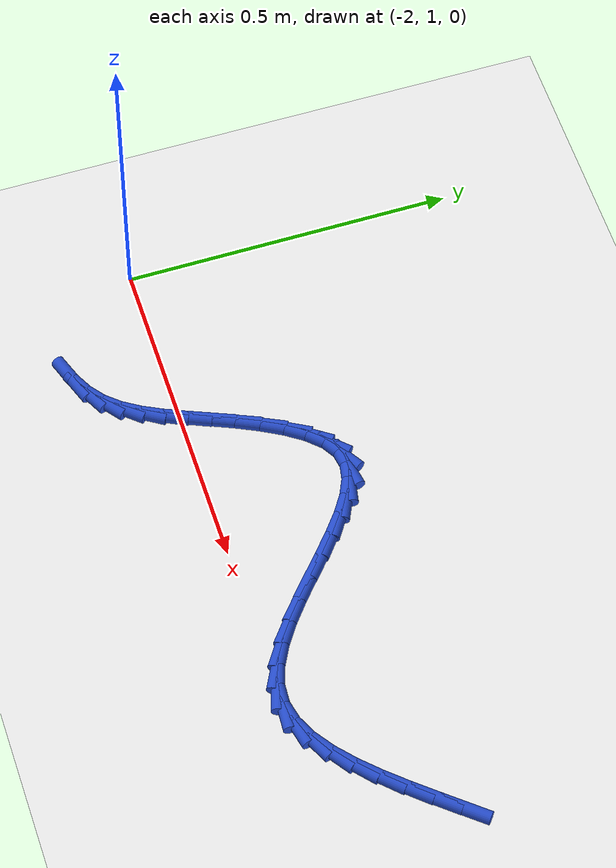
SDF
<sdf version="1.6">
 <world name="default">
  <model name="ground_plane">
   <static>1</static>
   <link name="link">
    <collision name="collision">
     <geometry><plane><normal>0 0 1</normal><size>100 100</size></plane></geometry>
     <surface><friction><ode><mu>100</mu><mu2>50</mu2></ode></friction></surface>
    </collision>
    <visual name="visual">
     <cast_shadows>0</cast_shadows>
     <geometry><plane><normal>0 0 1</normal><size>100 100</size></plane></geometry>
     <material>
      <script><uri>file://media/materials/scripts/gazebo.material</uri><name>Gazebo/WhiteGlow</name></script>
     </material>
    </visual>
   </link>
  </model>
  <model name="line">
   <link name="link_67">
    <pose>-1.0148896354427461 1.1883247469384344 0.01 0 1.57 0.8768384008983708</pose>
    <collision name="collision">
     <geometry><cylinder><radius>0.01</radius><length>0.08</length></cylinder></geometry>
    </collision>
    <visual name="visual">
     <material>
      <script><name>Gazebo/Blue</name><uri>file://media/materials/scripts/gazebo.material</uri></script>
     </material>
     <geometry><cylinder><radius>0.01</radius><length>0.08</length></cylinder></geometry>
    </visual>
   </link>
   <link name="link_68">
    <pose>-1.040775350299143 1.1572125550854837 0.01 0 1.57 0.8687657163153698</pose>
    <collision name="collision">
     <geometry><cylinder><radius>0.01</radius><length>0.08</length></cylinder></geometry>
    </collision>
    <visual name="visual">
     <material>
      <script><name>Gazebo/Blue</name><uri>file://media/materials/scripts/gazebo.material</uri></script>
     </material>
     <geometry><cylinder><radius>0.01</radius><length>0.08</length></cylinder></geometry>
    </visual>
   </link>
   <link name="link_69">
    <pose>-1.0674374701745866 1.125688311052956 0.01 0 1.57 0.8415214317492103</pose>
    <collision name="collision">
     <geometry><cylinder><radius>0.01</radius><length>0.08</length></cylinder></geometry>
    </collision>
    <visual name="visual">
     <material>
      <script><name>Gazebo/Blue</name><uri>file://media/materials/scripts/gazebo.material</uri></script>
     </material>
     <geometry><cylinder><radius>0.01</radius><length>0.08</length></cylinder></geometry>
    </visual>
   </link>
   <link name="link_70">
    <pose>-1.0948083071328285 1.0950588878915377 0.01 0 1.57 0.7927663170238698</pose>
    <collision name="collision">
     <geometry><cylinder><radius>0.01</radius><length>0.08</length></cylinder></geometry>
    </collision>
    <visual name="visual">
     <material>
      <script><name>Gazebo/Blue</name><uri>file://media/materials/scripts/gazebo.material</uri></script>
     </material>
     <geometry><cylinder><radius>0.01</radius><length>0.08</length></cylinder></geometry>
    </visual>
   </link>
   <link name="link_71">
    <pose>-1.1228201732376208 1.0666311586519142 0.01 0 1.57 0.7169864791320324</pose>
    <collision name="collision">
     <geometry><cylinder><radius>0.01</radius><length>0.08</length></cylinder></geometry>
    </collision>
    <visual name="visual">
     <material>
      <script><name>Gazebo/Blue</name><uri>file://media/materials/scripts/gazebo.material</uri></script>
     </material>
     <geometry><cylinder><radius>0.01</radius><length>0.08</length></cylinder></geometry>
    </visual>
   </link>
   <link name="link_72">
    <pose>-1.1514053805527154 1.0417119963847719 0.01 0 1.57 0.6047052007351809</pose>
    <collision name="collision">
     <geometry><cylinder><radius>0.01</radius><length>0.08</length></cylinder></geometry>
    </collision>
    <visual name="visual">
     <material>
      <script><name>Gazebo/Blue</name><uri>file://media/materials/scripts/gazebo.material</uri></script>
     </material>
     <geometry><cylinder><radius>0.01</radius><length>0.08</length></cylinder></geometry>
    </visual>
   </link>
   <link name="link_73">
    <pose>-1.1804962411418634 1.021608274140797 0.01 0 1.57 0.44221020735867445</pose>
    <collision name="collision">
     <geometry><cylinder><radius>0.01</radius><length>0.08</length></cylinder></geometry>
    </collision>
    <visual name="visual">
     <material>
      <script><name>Gazebo/Blue</name><uri>file://media/materials/scripts/gazebo.material</uri></script>
     </material>
     <geometry><cylinder><radius>0.01</radius><length>0.08</length></cylinder></geometry>
    </visual>
   </link>
   <link name="link_74">
    <pose>-1.2100250670688169 1.0076268649706759 0.01 0 1.57 0.21573412126500044</pose>
    <collision name="collision">
     <geometry><cylinder><radius>0.01</radius><length>0.08</length></cylinder></geometry>
    </collision>
    <visual name="visual">
     <material>
      <script><name>Gazebo/Blue</name><uri>file://media/materials/scripts/gazebo.material</uri></script>
     </material>
     <geometry><cylinder><radius>0.01</radius><length>0.08</length></cylinder></geometry>
    </visual>
   </link>
   <link name="link_75">
    <pose>-1.2399241703973276 1.001074641925095 0.01 0 1.57 -0.06392255518098047</pose>
    <collision name="collision">
     <geometry><cylinder><radius>0.01</radius><length>0.08</length></cylinder></geometry>
    </collision>
    <visual name="visual">
     <material>
      <script><name>Gazebo/Blue</name><uri>file://media/materials/scripts/gazebo.material</uri></script>
     </material>
     <geometry><cylinder><radius>0.01</radius><length>0.08</length></cylinder></geometry>
    </visual>
   </link>
   <link name="link_76">
    <pose>-1.2701199931716 1.003007469360951 0.01 0 1.57 -0.30886239715978436</pose>
    <collision name="collision">
     <geometry><cylinder><radius>0.01</radius><length>0.08</length></cylinder></geometry>
    </collision>
    <visual name="visual">
     <material>
      <script><name>Gazebo/Blue</name><uri>file://media/materials/scripts/gazebo.material</uri></script>
     </material>
     <geometry><cylinder><radius>0.01</radius><length>0.08</length></cylinder></geometry>
    </visual>
   </link>
   <link name="link_77">
    <pose>-1.300497324261288 1.0127000746468025 0.01 0 1.57 -0.4830193600694551</pose>
    <collision name="collision">
     <geometry><cylinder><radius>0.01</radius><length>0.08</length></cylinder></geometry>
    </collision>
    <visual name="visual">
     <material>
      <script><name>Gazebo/Blue</name><uri>file://media/materials/scripts/gazebo.material</uri></script>
     </material>
     <geometry><cylinder><radius>0.01</radius><length>0.08</length></cylinder></geometry>
    </visual>
   </link>
   <link name="link_78">
    <pose>-1.3309229395376359 1.0286569289083327 0.01 0 1.57 -0.5992223240504596</pose>
    <collision name="collision">
     <geometry><cylinder><radius>0.01</radius><length>0.08</length></cylinder></geometry>
    </collision>
    <visual name="visual">
     <material>
      <script><name>Gazebo/Blue</name><uri>file://media/materials/scripts/gazebo.material</uri></script>
     </material>
     <geometry><cylinder><radius>0.01</radius><length>0.08</length></cylinder></geometry>
    </visual>
   </link>
   <link name="link_79">
    <pose>-1.3612635430541562 1.049379432263485 0.01 0 1.57 -0.6725451348696061</pose>
    <collision name="collision">
     <geometry><cylinder><radius>0.01</radius><length>0.08</length></cylinder></geometry>
    </collision>
    <visual name="visual">
     <material>
      <script><name>Gazebo/Blue</name><uri>file://media/materials/scripts/gazebo.material</uri></script>
     </material>
     <geometry><cylinder><radius>0.01</radius><length>0.08</length></cylinder></geometry>
    </visual>
   </link>
   <link name="link_80">
    <pose>-1.3913858388643598 1.073368984830202 0.01 0 1.57 -0.7132601924840442</pose>
    <collision name="collision">
     <geometry><cylinder><radius>0.01</radius><length>0.08</length></cylinder></geometry>
    </collision>
    <visual name="visual">
     <material>
      <script><name>Gazebo/Blue</name><uri>file://media/materials/scripts/gazebo.material</uri></script>
     </material>
     <geometry><cylinder><radius>0.01</radius><length>0.08</length></cylinder></geometry>
    </visual>
   </link>
   <link name="link_81">
    <pose>-1.421156531021759 1.0991269867264262 0.01 0 1.57 -0.7265667180575748</pose>
    <collision name="collision">
     <geometry><cylinder><radius>0.01</radius><length>0.08</length></cylinder></geometry>
    </collision>
    <visual name="visual">
     <material>
      <script><name>Gazebo/Blue</name><uri>file://media/materials/scripts/gazebo.material</uri></script>
     </material>
     <geometry><cylinder><radius>0.01</radius><length>0.08</length></cylinder></geometry>
    </visual>
   </link>
   <link name="link_82">
    <pose>-1.450442323579866 1.1251548380701015 0.01 0 1.57 -0.7131706491130523</pose>
    <collision name="collision">
     <geometry><cylinder><radius>0.01</radius><length>0.08</length></cylinder></geometry>
    </collision>
    <visual name="visual">
     <material>
      <script><name>Gazebo/Blue</name><uri>file://media/materials/scripts/gazebo.material</uri></script>
     </material>
     <geometry><cylinder><radius>0.01</radius><length>0.08</length></cylinder></geometry>
    </visual>
   </link>
   <link name="link_83">
    <pose>-1.4791099205921916 1.1499539389791698 0.01 0 1.57 -0.6690110568411057</pose>
    <collision name="collision">
     <geometry><cylinder><radius>0.01</radius><length>0.08</length></cylinder></geometry>
    </collision>
    <visual name="visual">
     <material>
      <script><name>Gazebo/Blue</name><uri>file://media/materials/scripts/gazebo.material</uri></script>
     </material>
     <geometry><cylinder><radius>0.01</radius><length>0.08</length></cylinder></geometry>
    </visual>
   </link>
   <link name="link_84">
    <pose>-1.5070260261122481 1.1720256895715744 0.01 0 1.57 -0.583505202818858</pose>
    <collision name="collision">
     <geometry><cylinder><radius>0.01</radius><length>0.08</length></cylinder></geometry>
    </collision>
    <visual name="visual">
     <material>
      <script><name>Gazebo/Blue</name><uri>file://media/materials/scripts/gazebo.material</uri></script>
     </material>
     <geometry><cylinder><radius>0.01</radius><length>0.08</length></cylinder></geometry>
    </visual>
   </link>
   <link name="link_85">
    <pose>-1.5340573441935477 1.1898714899652585 0.01 0 1.57 -0.4360506105642137</pose>
    <collision name="collision">
     <geometry><cylinder><radius>0.01</radius><length>0.08</length></cylinder></geometry>
    </collision>
    <visual name="visual">
     <material>
      <script><name>Gazebo/Blue</name><uri>file://media/materials/scripts/gazebo.material</uri></script>
     </material>
     <geometry><cylinder><radius>0.01</radius><length>0.08</length></cylinder></geometry>
    </visual>
   </link>
   <link name="link_86">
    <pose>-1.5600705788896008 1.2019927402781647 0.01 0 1.57 -0.19452147789274638</pose>
    <collision name="collision">
     <geometry><cylinder><radius>0.01</radius><length>0.08</length></cylinder></geometry>
    </collision>
    <visual name="visual">
     <material>
      <script><name>Gazebo/Blue</name><uri>file://media/materials/scripts/gazebo.material</uri></script>
     </material>
     <geometry><cylinder><radius>0.01</radius><length>0.08</length></cylinder></geometry>
    </visual>
   </link>
   <link name="link_87">
    <pose>-1.5849324342539206 1.2068908406282364 0.01 0 1.57 0.16077606367250052</pose>
    <collision name="collision">
     <geometry><cylinder><radius>0.01</radius><length>0.08</length></cylinder></geometry>
    </collision>
    <visual name="visual">
     <material>
      <script><name>Gazebo/Blue</name><uri>file://media/materials/scripts/gazebo.material</uri></script>
     </material>
     <geometry><cylinder><radius>0.01</radius><length>0.08</length></cylinder></geometry>
    </visual>
   </link>
   <link name="link_88">
    <pose>-1.60850961435825 1.2030671917439901 0.01 0 1.57 0.5448602734054879</pose>
    <collision name="collision">
     <geometry><cylinder><radius>0.01</radius><length>0.08</length></cylinder></geometry>
    </collision>
    <visual name="visual">
     <material>
      <script><name>Gazebo/Blue</name><uri>file://media/materials/scripts/gazebo.material</uri></script>
     </material>
     <geometry><cylinder><radius>0.01</radius><length>0.08</length></cylinder></geometry>
    </visual>
   </link>
   <link name="link_89">
    <pose>-1.6306868395162615 1.1896265596619744 0.01 0 1.57 0.8061729383634196</pose>
    <collision name="collision">
     <geometry><cylinder><radius>0.01</radius><length>0.08</length></cylinder></geometry>
    </collision>
    <visual name="visual">
     <material>
      <script><name>Gazebo/Blue</name><uri>file://media/materials/scripts/gazebo.material</uri></script>
     </material>
     <geometry><cylinder><radius>0.01</radius><length>0.08</length></cylinder></geometry>
    </visual>
   </link>
   <link name="link_90">
    <pose>-1.6514187357571326 1.1680148581303933 0.01 0 1.57 0.9644395929362332</pose>
    <collision name="collision">
     <geometry><cylinder><radius>0.01</radius><length>0.08</length></cylinder></geometry>
    </collision>
    <visual name="visual">
     <material>
      <script><name>Gazebo/Blue</name><uri>file://media/materials/scripts/gazebo.material</uri></script>
     </material>
     <geometry><cylinder><radius>0.01</radius><length>0.08</length></cylinder></geometry>
    </visual>
   </link>
   <link name="link_91">
    <pose>-1.6706768818050357 1.140245747938085 0.01 0 1.57 1.0630608977642992</pose>
    <collision name="collision">
     <geometry><cylinder><radius>0.01</radius><length>0.08</length></cylinder></geometry>
    </collision>
    <visual name="visual">
     <material>
      <script><name>Gazebo/Blue</name><uri>file://media/materials/scripts/gazebo.material</uri></script>
     </material>
     <geometry><cylinder><radius>0.01</radius><length>0.08</length></cylinder></geometry>
    </visual>
   </link>
   <link name="link_92">
    <pose>-1.6884328563841466 1.108332889873889 0.01 0 1.57 1.126031035746124</pose>
    <collision name="collision">
     <geometry><cylinder><radius>0.01</radius><length>0.08</length></cylinder></geometry>
    </collision>
    <visual name="visual">
     <material>
      <script><name>Gazebo/Blue</name><uri>file://media/materials/scripts/gazebo.material</uri></script>
     </material>
     <geometry><cylinder><radius>0.01</radius><length>0.08</length></cylinder></geometry>
    </visual>
   </link>
   <link name="link_93">
    <pose>-1.7046582382186375 1.074289944726643 0.01 0 1.57 1.164848226574657</pose>
    <collision name="collision">
     <geometry><cylinder><radius>0.01</radius><length>0.08</length></cylinder></geometry>
    </collision>
    <visual name="visual">
     <material>
      <script><name>Gazebo/Blue</name><uri>file://media/materials/scripts/gazebo.material</uri></script>
     </material>
     <geometry><cylinder><radius>0.01</radius><length>0.08</length></cylinder></geometry>
    </visual>
   </link>
   <link name="link_94">
    <pose>-1.7193634087079372 1.0400777375048191 0.01 0 1.57 1.1780720610645088</pose>
    <collision name="collision">
     <geometry><cylinder><radius>0.01</radius><length>0.08</length></cylinder></geometry>
    </collision>
    <visual name="visual">
     <material>
      <script><name>Gazebo/Blue</name><uri>file://media/materials/scripts/gazebo.material</uri></script>
     </material>
     <geometry><cylinder><radius>0.01</radius><length>0.08</length></cylinder></geometry>
    </visual>
   </link>
   <link name="link_95">
    <pose>-1.7330970895857623 1.006924060469048 0.01 0 1.57 1.159304241809323</pose>
    <collision name="collision">
     <geometry><cylinder><radius>0.01</radius><length>0.08</length></cylinder></geometry>
    </collision>
    <visual name="visual">
     <material>
      <script><name>Gazebo/Blue</name><uri>file://media/materials/scripts/gazebo.material</uri></script>
     </material>
     <geometry><cylinder><radius>0.01</radius><length>0.08</length></cylinder></geometry>
    </visual>
   </link>
   <link name="link_96">
    <pose>-1.7468018135400156 0.9755204720005889 0.01 0 1.57 1.1032850711274003</pose>
    <collision name="collision">
     <geometry><cylinder><radius>0.01</radius><length>0.08</length></cylinder></geometry>
    </collision>
    <visual name="visual">
     <material>
      <script><name>Gazebo/Blue</name><uri>file://media/materials/scripts/gazebo.material</uri></script>
     </material>
     <geometry><cylinder><radius>0.01</radius><length>0.08</length></cylinder></geometry>
    </visual>
   </link>
   <link name="link_97">
    <pose>-1.7614291215728122 0.9465462642823519 0.01 0 1.57 1.0029246461842833</pose>
    <collision name="collision">
     <geometry><cylinder><radius>0.01</radius><length>0.08</length></cylinder></geometry>
    </collision>
    <visual name="visual">
     <material>
      <script><name>Gazebo/Blue</name><uri>file://media/materials/scripts/gazebo.material</uri></script>
     </material>
     <geometry><cylinder><radius>0.01</radius><length>0.08</length></cylinder></geometry>
    </visual>
   </link>
   <link name="link_98">
    <pose>-1.7779305546862676 0.9206807294972471 0.01 0 1.57 0.8517297017831087</pose>
    <collision name="collision">
     <geometry><cylinder><radius>0.01</radius><length>0.08</length></cylinder></geometry>
    </collision>
    <visual name="visual">
     <material>
      <script><name>Gazebo/Blue</name><uri>file://media/materials/scripts/gazebo.material</uri></script>
     </material>
     <geometry><cylinder><radius>0.01</radius><length>0.08</length></cylinder></geometry>
    </visual>
   </link>
   <link name="link_99">
    <pose>-1.7972576538824965 0.8986031598281838 0.01 0 1.57 0.6544316207510403</pose>
    <collision name="collision">
     <geometry><cylinder><radius>0.01</radius><length>0.08</length></cylinder></geometry>
    </collision>
    <visual name="visual">
     <material>
      <script><name>Gazebo/Blue</name><uri>file://media/materials/scripts/gazebo.material</uri></script>
     </material>
     <geometry><cylinder><radius>0.01</radius><length>0.08</length></cylinder></geometry>
    </visual>
   </link>
   <link name="link_100">
    <pose>-1.8202950940471763 0.880928356906205 0.01 0 1.57 0.4702248244124205</pose>
    <collision name="collision">
     <geometry><cylinder><radius>0.01</radius><length>0.08</length></cylinder></geometry>
    </collision>
    <visual name="visual">
     <material>
      <script><name>Gazebo/Blue</name><uri>file://media/materials/scripts/gazebo.material</uri></script>
     </material>
     <geometry><cylinder><radius>0.01</radius><length>0.08</length></cylinder></geometry>
    </visual>
   </link>
   <link name="link_101">
    <pose>-1.8469858058012487 0.8673628356158471 0.01 0 1.57 0.3386067320010626</pose>
    <collision name="collision">
     <geometry><cylinder><radius>0.01</radius><length>0.08</length></cylinder></geometry>
    </collision>
    <visual name="visual">
     <material>
      <script><name>Gazebo/Blue</name><uri>file://media/materials/scripts/gazebo.material</uri></script>
     </material>
     <geometry><cylinder><radius>0.01</radius><length>0.08</length></cylinder></geometry>
    </visual>
   </link>
  </model>
 </world>
</sdf>
